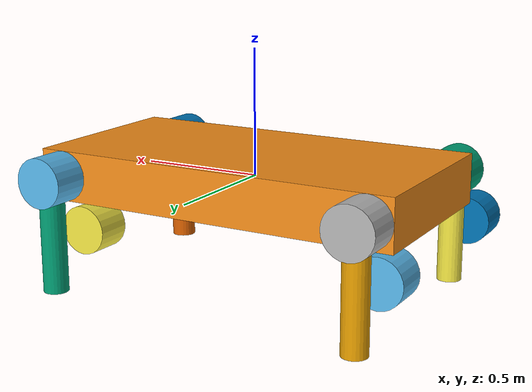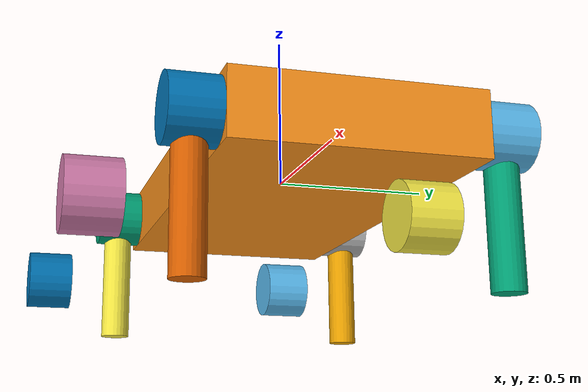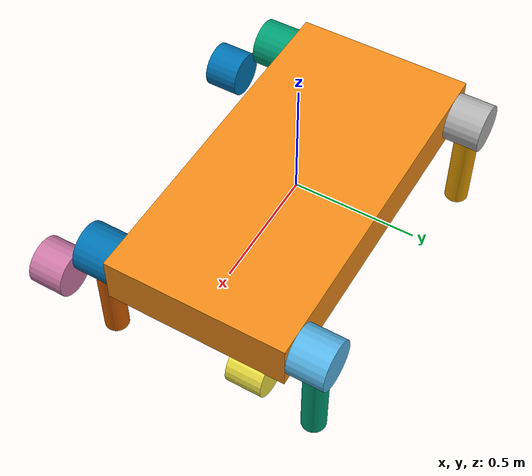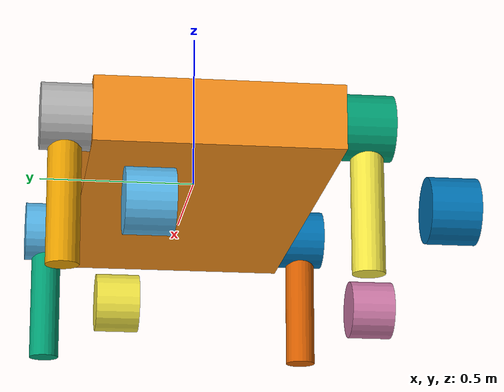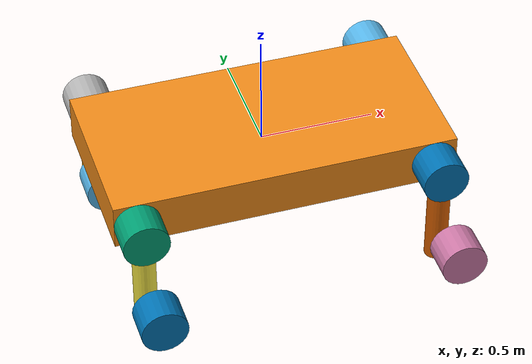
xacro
<?xml version="1.0"?>
<robot name="m4wr" xmlns:xacro="http://www.ros.org/wiki/xacro">

	<!-- INCLUDES -->
	<xacro:include filename="$(find riser_robot_description)/urdf/materials.xacro"/>
	<xacro:include filename="$(find riser_robot_description)/urdf/leg.xacro"/>

	<!-- CONSTANTS -->
	<xacro:property name="chassis_length" value="1.5" />
	<xacro:property name="chassis_height" value="0.2"/>
	<xacro:property name="chassis_width" value="0.75"/>
	<xacro:property name="wheel_radius" value="${chassis_length/5}"/>
	<xacro:property name="wheel_thickness" value="${chassis_length/20}"/>
	<xacro:property name="sensor_plate_width" value="0.2"/>
	<xacro:property name="chassis_mass" value="20.0"/>
	<xacro:property name="wheel_mass" value="${chassis_mass/10}"/>
	<xacro:property name="i_value" value="1.0"/>
	<xacro:property name="i_value_w" value="0.2"/>
	<xacro:property name="wheel_damping" value="0.0"/>
	<xacro:property name="wheel_friction" value="10000.0"/>
	<xacro:property name="friction_const" value="500.0"/>
	<xacro:property name="pi" value="3.1415" />
  <xacro:property name="holder_radius" value="${chassis_height/2}" />
  <xacro:property name="holder_length" value="${chassis_height/2 + 0.05}" />
  <xacro:property name="pipe_radius" value="0.05" />
  <xacro:property name="pipe_length" value="0.4" />

  <gazebo reference="base_link">
    <material>Gazebo/Orange</material>
  </gazebo>

	<!-- LINKS -->
	 <link name="base_link">
	 		<pose>0 0 0 0 0 0</pose>
		  <inertial>
		    <mass value="20"/>
		    <origin rpy="0 0 0" xyz="0 0 0"/>
		    <inertia ixx="${i_value}" ixy="0" ixz="0" iyy="${i_value}" iyz="0" izz="${i_value}"/>
		  </inertial>
		  <collision>
		  	<origin rpy="0 0 0" xyz="0 0 0"/>
		    <geometry>
		      <box size="${chassis_length} ${chassis_width} ${chassis_height}"/>
		    </geometry>
		  </collision>
		  <visual>
		    <origin rpy="0 0 0" xyz="0 0 0"/>
		    <geometry>
		      <box size="${chassis_length} ${chassis_width} ${chassis_height}"/>
		    </geometry>
		  </visual>
    </link>

  <!-- Legs -->
  <xacro:leg name="front_left" parent="base_link" holder_length="${holder_length}" holder_radius="${holder_radius}" pipe_length="${pipe_length}" pipe_radius="${pipe_radius}">
		<origin xyz="${chassis_length/2 - holder_radius} ${chassis_width/2 + holder_length/2} 0" rpy="${pi/2} 0 0"/>
	</xacro:leg>

  <xacro:leg name="front_right" parent="base_link" holder_length="${holder_length}" holder_radius="${holder_radius}" pipe_length="${pipe_length}" pipe_radius="${pipe_radius}">
		<origin xyz="${chassis_length/2 - holder_radius} ${-chassis_width/2 - holder_length/2} 0" rpy="${pi/2} 0 0"/>
	</xacro:leg>

	<xacro:leg name="rear_left" parent="base_link" holder_length="${holder_length}" holder_radius="${holder_radius}" pipe_length="${pipe_length}" pipe_radius="${pipe_radius}">
		<origin xyz="${-chassis_length/2 + holder_radius} ${chassis_width/2 + holder_length/2} 0" rpy="${pi/2} 0 0"/>
	</xacro:leg>

	<xacro:leg name="rear_right" parent="base_link" holder_length="${holder_length}" holder_radius="${holder_radius}" pipe_length="${pipe_length}" pipe_radius="${pipe_radius}">
		<origin xyz="${-chassis_length/2 + holder_radius} ${-chassis_width/2 - holder_length/2} 0" rpy="${pi/2} 0 0"/>
	</xacro:leg>
	<!-- ################################ SENSORS ################################ -->

	<!-- ################################ LEGS ################################ -->

	<!-- ################################ JOINTS ################################ -->

	<!-- PLUGINS -->
				<!-- test plugin -->
</robot>

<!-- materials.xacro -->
<robot>
	<material name="black">
    <color rgba="0.0 0.0 0.0 1.0"/>
  </material>

  <material name="blue">
    <color rgba="0.0 0.0 0.8 1.0"/>
  </material>

  <material name="green">
    <color rgba="0.0 1.0 0.0 1.0"/>
  </material>

  <material name="grey">
    <color rgba="0.2 0.2 0.2 1.0"/>
  </material>

  <material name="orange">
    <color rgba="${255/255} ${108/255} ${10/255} 1.0"/>
  </material>

  <material name="brown">
    <color rgba="${222/255} ${207/255} ${195/255} 1.0"/>
  </material>

  <material name="red">
    <color rgba="0.8 0.0 0.0 1.0"/>
  </material>

  <material name="white">
    <color rgba="1.0 1.0 1.0 1.0"/>
  </material>
</robot>

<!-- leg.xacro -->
<robot xmlns:xacro="http://www.ros.org/wiki/xacro">
	<xacro:include filename="$(find riser_robot_description)/urdf/inertials.xacro"/>
	<xacro:macro name="leg" params="name parent *leg_origin holder_length holder_radius pipe_length pipe_radius">

	<xacro:property name="holder_weight" value="0.5" />
	<xacro:property name="pipe_weights" value="0.25" />
	<xacro:property name="pi" value="3.1415" />
	<!-- LINKS -->
	<link name="${name}_leg_link">
		<pose>0 0 0 0 0 0</pose>
		<xacro:cylinder_inertial mass="${holder_weight}" radius="${holder_radius}" length="${holder_length}"/>
		<collision>
			<origin rpy="0 0 0" xyz="0 0 0"/>
			<geometry>
		  	<cylinder length="${holder_length}" radius="${holder_radius}"/>
			</geometry>
		</collision>
		<visual>
			<origin rpy="0 0 0" xyz="0 0 0"/>
		  <geometry>
		  	<cylinder length="${holder_length}" radius="${holder_radius}"/>
		  </geometry>
	  </visual>
  </link>

  <link name="${name}_upper_pipe">
		<pose>0 0 0 0 0 0</pose>
		<xacro:cylinder_inertial mass="${pipe_weights}" radius="${pipe_radius}" length="${pipe_length}"/>
		<collision>
			<origin rpy="0 0 0" xyz="0 0 0"/>
			<geometry>
		  	<cylinder length="${pipe_length}" radius="${pipe_radius}"/>
			</geometry>
		</collision>
		<visual>
			<origin rpy="0 0 0" xyz="0 0 0"/>
		  <geometry>
		  	<cylinder length="${pipe_length}" radius="${pipe_radius}"/>
		  </geometry>
	  </visual>
  </link>

  <link name="${name}_lower_leg_link">
		<pose>0 0 0 0 0 0</pose>
		<xacro:cylinder_inertial mass="${holder_weight}" radius="${holder_radius}" length="${holder_length}"/>
		<collision>
			<origin rpy="0 0 0" xyz="0 0 0"/>
			<geometry>
		  	<cylinder length="${holder_length}" radius="${holder_radius}"/>
			</geometry>
		</collision>
		<visual>
			<origin rpy="0 0 0" xyz="0 0 0"/>
		  <geometry>
		  	<cylinder length="${holder_length}" radius="${holder_radius}"/>
		  </geometry>
	  </visual>
  </link>

	<!-- JOINTS -->
	<joint name="${name}_leg_joint" type="fixed">
			<child link="${name}_leg_link"/>
			<parent link="${parent}"/>
			<xacro:insert_block name="leg_origin" />
	</joint>

	<joint name="${name}_upper_pipe_joint" type="fixed">
			<child link="${name}_upper_pipe"/>
			<parent link="${name}_leg_link"/>
			<origin xyz="0 -${holder_radius/2 + pipe_length/2} 0" rpy="-${pi/2} 0 0"/>
	</joint>

	<joint name="${name}_lower_leg_joint" type="fixed">
			<child link="${name}_lower_leg_link"/>
			<parent link="${name}_upper_pipe"/>
			<origin xyz="0 -${holder_radius/2 + pipe_length/2} 0" rpy="-${pi/2} 0 0"/>
	</joint>

	</xacro:macro>
</robot>

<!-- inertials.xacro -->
<robot name="inertials" xmlns:xacro="http://www.ros.org/wiki/xacro">
  <xacro:property name="M_PI" value="3.1415926535897931" />

  <!-- see https://secure.wikimedia.org/wikipedia/en/wiki/List_of_moment_of_inertia_tensors -->

  <!-- #################### versions without origin #################### -->
  <xacro:macro name="sphere_inertial" params="radius mass">
    <inertial>
      <mass value="${mass}" />
      <origin xyz="0 0 0" />
      <inertia ixx="${0.4 * mass * radius * radius}" ixy="0.0" ixz="0.0"
        iyy="${0.4 * mass * radius * radius}" iyz="0.0"
        izz="${0.4 * mass * radius * radius}" />
    </inertial>
  </xacro:macro>

  <xacro:macro name="cylinder_inertial" params="radius length mass">
    <inertial>
      <mass value="${mass}" />
      <origin xyz="0 0 0" />
      <inertia ixx="${0.0833333 * mass * (3 * radius * radius + length * length)}" ixy="0.0" ixz="0.0"
        iyy="${0.0833333 * mass * (3 * radius * radius + length * length)}" iyz="0.0"
        izz="${0.5 * mass * radius * radius}" />
    </inertial>
  </xacro:macro>

  <xacro:macro name="box_inertial" params="x y z mass">
    <inertial>
      <mass value="${mass}" />
      <origin xyz="0 0 0" />
      <inertia ixx="${0.0833333 * mass * (y*y + z*z)}" ixy="0.0" ixz="0.0"
        iyy="${0.0833333 * mass * (x*x + z*z)}" iyz="0.0"
        izz="${0.0833333 * mass * (x*x + y*y)}" />
    </inertial>
  </xacro:macro>

  <!-- #################### versions with origin #################### -->
  <xacro:macro name="sphere_inertial_with_origin" params="radius mass *origin">
    <inertial>
      <mass value="${mass}" />
      <insert_block name="origin" />
      <inertia ixx="${0.4 * mass * radius * radius}" ixy="0.0" ixz="0.0"
        iyy="${0.4 * mass * radius * radius}" iyz="0.0"
        izz="${0.4 * mass * radius * radius}" />
    </inertial>
  </xacro:macro>

  <xacro:macro name="cylinder_inertial_with_origin" params="radius length mass *origin">
    <inertial>
      <mass value="${mass}" />
      <insert_block name="origin" />
      <inertia ixx="${0.0833333 * mass * (3 * radius * radius + length * length)}" ixy="0.0" ixz="0.0"
        iyy="${0.0833333 * mass * (3 * radius * radius + length * length)}" iyz="0.0"
        izz="${0.5 * mass * radius * radius}" />
    </inertial>
  </xacro:macro>

  <xacro:macro name="box_inertial_with_origin" params="x y z mass *origin">
    <inertial>
      <mass value="${mass}" />
      <insert_block name="origin" />
      <inertia ixx="${0.0833333 * mass * (y*y + z*z)}" ixy="0.0" ixz="0.0"
        iyy="${0.0833333 * mass * (x*x + z*z)}" iyz="0.0"
        izz="${0.0833333 * mass * (x*x + y*y)}" />
    </inertial>
  </xacro:macro>

</robot>
